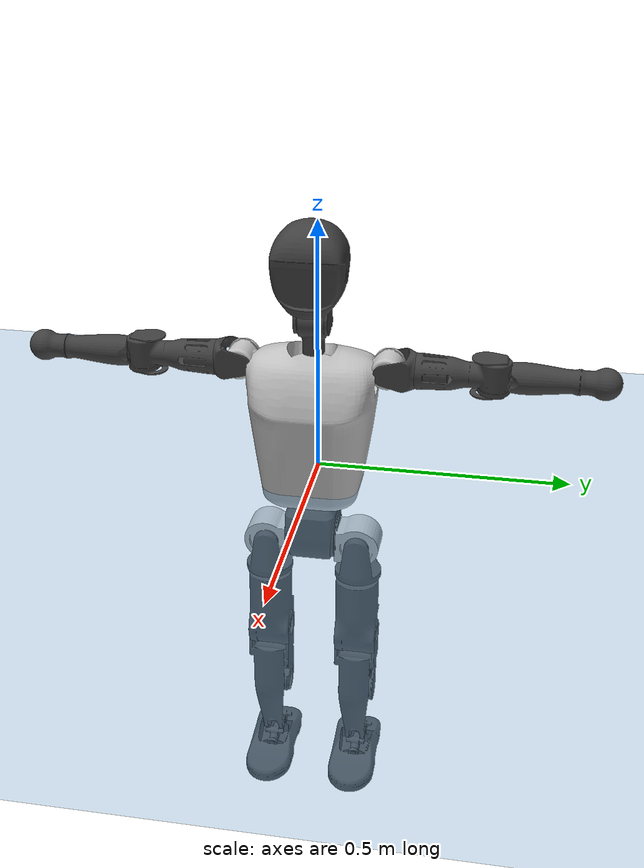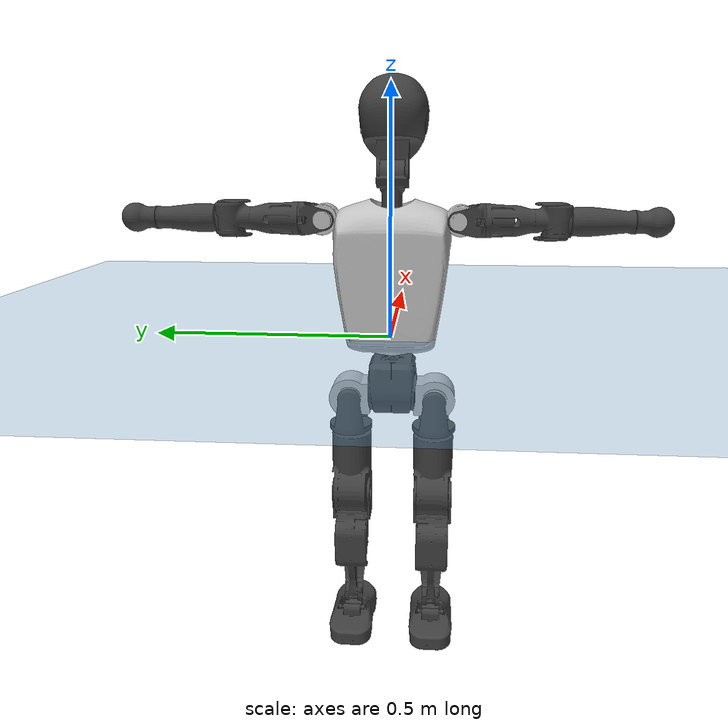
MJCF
<mujoco model="T1">
  <compiler angle="radian" assetdir="assets" balanceinertia="true" inertiafromgeom="false"/>

  <option timestep="0.005" density="1.2" viscosity="2e-05"/>

  <size nkey="1"/>

  <visual>
    <quality shadowsize="8192"/>
    <map shadowclip="0.5"/>
  </visual>

  <default>
    <default class="/">
      <joint armature="0.01" damping="0.01" frictionloss="0.1"/>
      <geom contype="0" conaffinity="0" group="1" solref="-1000 -80"/>
      <site size="0.01 0.005 0.005" group="5"/>
      <general forcelimited="true" biastype="affine" gainprm="25" biasprm="0 -25 -0.6"/>
      <default class="t1">
        <geom rgba="0.25 0.25 0.25 1"/>
        <default class="visual">
          <geom type="mesh" group="2"/>
        </default>
        <default class="collision">
          <geom group="3"/>
        </default>
        <default class="foot">
          <geom size="0.1115 0.05 0.015" type="box" condim="6" group="4" priority="1" solimp="0.015 1 0.015"/>
        </default>
        <default class="reward_collision_sphere">
          <geom group="5" rgba="1 0 0 1"/>
        </default>
      </default>
    </default>
  </default>

  <asset>
    <texture type="skybox" colorspace="auto" name="//unnamed_texture_0" builtin="gradient" rgb1="0.95 0.95 0.95" rgb2="0.95 0.95 0.95" width="100" height="600"/>
    <texture type="2d" colorspace="auto" name="texplane" builtin="checker" rgb1="0.345 0.575 0.748" rgb2="0.345 0.575 0.748" markrgb="1 1 1" width="512" height="512"/>
    <material name="MatPlane" class="/" texture="texplane" texuniform="true" texrepeat="2 2" specular="0.9"/>
    <mesh name="Trunk" class="/" file="Trunk.stl"/>
    <mesh name="H1" class="/" file="H1.stl"/>
    <mesh name="H2" class="/" file="H2.stl"/>
    <mesh name="AL1" class="/" file="AL1.stl"/>
    <mesh name="AL2" class="/" file="AL2.stl"/>
    <mesh name="AL3" class="/" file="AL3.stl"/>
    <mesh name="left_hand_link" class="/" file="left_hand_link.stl"/>
    <mesh name="AR1" class="/" file="AR1.stl"/>
    <mesh name="AR2" class="/" file="AR2.stl"/>
    <mesh name="AR3" class="/" file="AR3.stl"/>
    <mesh name="right_hand_link" class="/" file="right_hand_link.stl"/>
    <mesh name="Waist" class="/" file="Waist.stl"/>
    <mesh name="Hip_Pitch_Left" class="/" file="Hip_Pitch_Left.stl"/>
    <mesh name="Hip_Roll_Left" class="/" file="Hip_Roll_Left.stl"/>
    <mesh name="Hip_Yaw_Left" class="/" file="Hip_Yaw_Left.stl"/>
    <mesh name="Shank_Left" class="/" file="Shank_Left.stl"/>
    <mesh name="Ankle_Cross_Left" class="/" file="Ankle_Cross_Left.stl"/>
    <mesh name="left_foot_link" class="/" file="left_foot_link.stl"/>
    <mesh name="Hip_Pitch_Right" class="/" file="Hip_Pitch_Right.stl"/>
    <mesh name="Hip_Roll_Right" class="/" file="Hip_Roll_Right.stl"/>
    <mesh name="Hip_Yaw_Right" class="/" file="Hip_Yaw_Right.stl"/>
    <mesh name="Shank_Right" class="/" file="Shank_Right.stl"/>
    <mesh name="Ankle_Cross_Right" class="/" file="Ankle_Cross_Right.stl"/>
    <mesh name="right_foot_link" class="/" file="right_foot_link.stl"/>
  </asset>

  <worldbody>
    <geom name="floor" class="/" size="100 100 0.125" type="plane" group="0" material="MatPlane"/>
    <light name="toplight_shadow" class="/" pos="0 0 5" dir="0.0990148 0.0990148 -0.990148" type="directional" ambient="0.04 0.04 0.04" diffuse="0.55 0.55 0.55" specular="0.12 0.12 0.12"/>
    <light name="toplight_fill" class="/" pos="0 0 5" dir="0.0990148 0.0990148 -0.990148" type="directional" castshadow="false" ambient="0.04 0.04 0.04" diffuse="0.3 0.3 0.3" specular="0.08 0.08 0.08"/>
    <body name="trunk" childclass="t1" pos="0.000235334 -5.65698e-05 -0.000121254" quat="1 0.000170137 -1.51401e-05 -1.10258e-06">
      <inertial pos="0.04245 -0.000748775 0.114018" quat="0.999972 0.00309865 -0.00641517 0.00221207" mass="9.0406" diaginertia="0.0273784 0.0411182 0.0826753"/>
      <joint name="//unnamed_joint_0" type="free" armature="0" damping="0" frictionloss="0"/>
      <geom name="//unnamed_geom_1" class="visual" rgba="0.76 0.76 0.76 1" mesh="Trunk"/>
      <geom name="//unnamed_geom_2" class="collision" size="0.0687793 0.0917058 0.137559" pos="0.0470381 0 0.130141" type="box"/>
      <geom name="//unnamed_geom_3" class="reward_collision_sphere" size="0.105462" pos="0.0470381 0 0.108451"/>
      <geom name="//unnamed_geom_4" class="reward_collision_sphere" size="0.0137559" pos="0.0470381 0.0750289 0"/>
      <geom name="//unnamed_geom_5" class="reward_collision_sphere" size="0.0137559" pos="0.0470381 -0.0750289 0"/>
      <geom name="//unnamed_geom_6" class="reward_collision_sphere" size="0.0137559" pos="0.0470381 0.0944482 0.195212"/>
      <geom name="//unnamed_geom_7" class="reward_collision_sphere" size="0.0137559" pos="0.0470381 -0.0944482 0.195212"/>
      <site name="imu" pos="0.00621284 -0.00224289 -0.00378147" size="0.00917058"/>
      <camera name="track" pos="0 -1.76539 0" quat="0.707107 0.707107 0 0" mode="trackcom"/>
      <camera name="ego_camera" pos="0.0956442 0 0.455495" quat="-0.5 -0.5 0.5 0.5"/>
      <body name="H1" pos="0.0494926 0.000567253 0.263227" quat="1 -0.000480324 -0.000169763 -4.09064e-05">
        <inertial pos="-0.00154517 -0.00176187 0.061803" quat="0.763479 -0.0128532 0.00151771 0.645703" mass="0.347233" diaginertia="7.19824e-05 0.000119992 0.000227299"/>
        <joint name="AAHead_yaw" pos="0 0 0" axis="-0.000105403 0.000317641 1" range="-1.58432 1.55536" armature="0.00926618" damping="0.00979955" frictionloss="0.091716"/>
        <geom name="//unnamed_geom_8" class="visual" mesh="H1"/>
        <body name="H2" pos="-0.000434353 -0.000962976 0.0668585" quat="1 -7.36439e-05 7.85822e-05 -3.48724e-05">
          <inertial pos="0.00655443 0.00148808 0.106205" quat="0.98859 0.106734 -0.0726084 -0.0776288" mass="0.492091" diaginertia="0.000596007 0.00103124 0.00255998"/>
          <joint name="Head_pitch" pos="0 0 0" axis="-0.000279732 -1 -0.000691364" range="-1.21771 0.337428" armature="0.0089835" damping="0.00875843" frictionloss="0.0921987"/>
          <geom name="//unnamed_geom_9" class="visual" mesh="H2"/>
          <geom name="//unnamed_geom_10" class="collision" size="0.0733646" pos="0.00783969 0 0.119296"/>
          <geom name="//unnamed_geom_11" class="reward_collision_sphere" size="0.0825352" pos="0.0156794 0 0.108451"/>
        </body>
      </body>
      <body name="AL1" pos="0.0465863 0.0944332 0.238493" quat="1 -7.33357e-05 0.000254725 9.84648e-05">
        <inertial pos="-0.00159573 0.0385576 0.000707365" quat="0.503671 0.495509 -0.507832 0.492842" mass="0.407383" diaginertia="0.000402333 0.000693234 0.000434808"/>
        <joint name="Left_Shoulder_Pitch" pos="0 0 0" axis="-5.39505e-05 0.999999 -0.00114601" range="-3.31893 1.23479" armature="0.00937271" damping="0.0100151" frictionloss="0.092321"/>
        <geom name="//unnamed_geom_12" class="visual" rgba="0.76 0.76 0.76 1" mesh="AL1"/>
        <body name="AL2" pos="0.000393882 0.0432279 0.000162867" quat="1 -0.000511724 -0.000408191 -0.000399018">
          <inertial pos="0.00180207 0.0337633 5.41616e-05" quat="0.486664 0.513769 -0.487893 0.511038" mass="0.126883" diaginertia="0.000119897 0.00018658 0.000266156"/>
          <joint name="Left_Shoulder_Roll" pos="0 0 0" axis="-0.999992 -0.00275269 0.00294364" range="-1.55797 1.73348" armature="0.00875122" damping="0.00424801" frictionloss="0.0941587"/>
          <geom name="//unnamed_geom_13" class="visual" mesh="AL2"/>
          <body name="AL3" pos="-0.000331366 0.054558 7.99819e-05" quat="1 0.000293169 0.00015041 0.000469289">
            <inertial pos="0.000199746 0.0753166 -0.000192695" quat="0.706374 0.707839 -0.000123501 0.000268584" mass="0.794772" diaginertia="0.00385068 0.00690022 0.000951263"/>
            <joint name="Left_Elbow_Pitch" pos="0 0 0" axis="-0.00032763 -0.999999 -0.00120701" range="-2.25527 2.26508" armature="0.00900219" damping="0.0105217" frictionloss="0.091185"/>
            <geom name="//unnamed_geom_14" class="visual" mesh="AL3"/>
            <geom name="//unnamed_geom_15" class="collision" size="0.0275117 0.0687793" pos="0 0.0441347 0" quat="0.707105 0.707108 0 0" type="cylinder"/>
            <geom name="//unnamed_geom_16" class="reward_collision_sphere" size="0.0330141"/>
            <body name="left_hand_link" pos="0.000484718 0.13146 5.93724e-05" quat="1 0.000267054 -0.000223538 0.000198022">
              <inertial pos="-7.38991e-05 0.0975827 -0.000128317" quat="0.706803 0.707407 -0.00197572 0.000517919" mass="0.247732" diaginertia="0.00234528 0.00426304 0.000320356"/>
              <joint name="Left_Elbow_Yaw" pos="0 0 0" axis="0.00380453 -0.00327042 0.999987" range="-2.44761 -0.00256285" armature="0.00920951" damping="0.0138226" frictionloss="0.0973545"/>
              <geom name="//unnamed_geom_17" class="visual" mesh="left_hand_link"/>
              <geom name="//unnamed_geom_18" class="collision" size="0.0275117 0.0802426" pos="0 0.11475 0" quat="0.707105 0.707108 0 0" type="cylinder"/>
              <geom name="//unnamed_geom_19" class="reward_collision_sphere" size="0.0458529"/>
              <geom name="//unnamed_geom_20" class="reward_collision_sphere" size="0.032097" pos="0 0.0970963 0"/>
              <geom name="//unnamed_geom_21" class="reward_collision_sphere" size="0.032097" pos="0 0.189779 0"/>
            </body>
          </body>
        </body>
      </body>
      <body name="AR1" pos="0.0442459 -0.09322 0.23735" quat="1 2.64397e-05 0.000318197 -0.00022712">
        <inertial pos="-0.000829108 -0.040138 0.000461535" quat="0.504459 0.495864 -0.50393 0.495676" mass="0.402752" diaginertia="0.000401974 0.00068912 0.000439415"/>
        <joint name="Right_Shoulder_Pitch" pos="0 0 0" axis="0.00364782 -0.999974 0.00622926" stiffness="0.00545329" range="-1.20815 3.29884" armature="0.0093095" damping="0.00876896" frictionloss="0.092009"/>
        <geom name="//unnamed_geom_22" class="visual" rgba="0.76 0.76 0.76 1" mesh="AR1"/>
        <body name="AR2" pos="-0.00130012 -0.0406644 -0.00037186" quat="1 0.0002027 -0.000218929 -0.000159653">
          <inertial pos="0.00377267 -0.0342143 0.000963645" quat="0.514797 0.485345 -0.51013 0.489072" mass="0.123144" diaginertia="0.000116882 0.000180463 0.000262742"/>
          <joint name="Right_Shoulder_Roll" pos="0 0 0" axis="-0.999972 0.00624702 -0.00423083" range="-1.75822 1.55492" armature="0.00907616" damping="0.00658378" frictionloss="0.0887401"/>
          <geom name="//unnamed_geom_23" class="visual" mesh="AR2"/>
          <body name="AR3" pos="0.000649642 -0.052337 5.61823e-05" quat="1 3.28893e-05 1.71411e-05 -9.47607e-05">
            <inertial pos="-0.000205189 -0.0755044 0.000509445" quat="0.707128 0.707049 -0.00209502 -0.00684818" mass="0.79602" diaginertia="0.00385631 0.00679622 0.000929585"/>
            <joint name="Right_Elbow_Pitch" pos="0 0 0" axis="-0.000836618 0.999999 -0.000653213" stiffness="0.000527822" range="-2.27228 2.26584" armature="0.00894061" damping="0.00507077" frictionloss="0.0959338"/>
            <geom name="//unnamed_geom_24" class="visual" mesh="AR3"/>
            <geom name="//unnamed_geom_25" class="collision" size="0.0275117 0.0687793" pos="0 -0.0441347 0" quat="0.707105 0.707108 0 0" type="cylinder"/>
            <geom name="//unnamed_geom_26" class="reward_collision_sphere" size="0.0330141"/>
            <body name="right_hand_link" pos="-0.00102055 -0.130434 -0.000664582" quat="1 -0.000200177 -0.000343385 0.000105333">
              <inertial pos="-3.05414e-05 -0.0967909 0.00167655" quat="0.705501 0.708704 -0.0016874 0.00183461" mass="0.250473" diaginertia="0.00240509 0.00429023 0.000318624"/>
              <joint name="Right_Elbow_Yaw" pos="0 0 0" axis="-0.00315828 0.0034618 0.999989" range="-0.000583936 2.44426" armature="0.00976208" damping="0.00752835" frictionloss="0.0920054"/>
              <geom name="//unnamed_geom_27" class="visual" mesh="right_hand_link"/>
              <geom name="//unnamed_geom_28" class="collision" size="0.0275117 0.0802426" pos="0 -0.11475 0" quat="0.707105 0.707108 0 0" type="cylinder"/>
              <geom name="//unnamed_geom_29" class="reward_collision_sphere" size="0.0458529"/>
              <geom name="//unnamed_geom_30" class="reward_collision_sphere" size="0.032097" pos="0 -0.0970963 0"/>
              <geom name="//unnamed_geom_31" class="reward_collision_sphere" size="0.032097" pos="0 -0.189779 0"/>
            </body>
          </body>
        </body>
      </body>
      <body name="Waist" pos="0.0491608 -0.00186574 -0.124959" quat="1 0.000167698 1.11523e-05 8.17103e-05">
        <inertial pos="0.00244157 -0.000750533 0.0081042" quat="0.984055 0.00282056 -0.177763 0.0052978" mass="1.97581" diaginertia="0.00159099 0.00281209 0.00716896"/>
        <joint name="Waist" pos="0 0 0" axis="0.00111626 0.000678003 0.999999" range="-1.54512 1.55435" armature="0.00905754" damping="0.0119672" frictionloss="0.090315"/>
        <geom name="//unnamed_geom_32" class="visual" mesh="Waist"/>
        <body name="Hip_Pitch_Left" pos="-0.000198245 0.0934298 0.000251934" quat="1 5.87982e-05 8.7696e-05 -0.000273148">
          <inertial pos="0.00131739 -0.00560521 -0.019679" quat="0.975043 0.221489 0.0152708 0.0012022" mass="0.791044" diaginertia="0.000538988 0.000803599 0.00190332"/>
          <joint name="Left_Hip_Pitch" pos="0 0 0" axis="0.00221193 0.999998 -0.000152319" range="-1.80646 1.55708" armature="0.00921163" damping="0.00533386" frictionloss="0.0916294"/>
          <geom name="//unnamed_geom_33" class="visual" rgba="0.76 0.76 0.76 1" mesh="Hip_Pitch_Left"/>
          <body name="Hip_Roll_Left" pos="-0.000374016 -0.000211309 -0.0209995" quat="1 -1.16052e-05 -1.15355e-05 -2.11915e-05">
            <inertial pos="0.000927396 -8.70613e-05 -0.0579542" quat="0.706447 -0.00576967 -0.00625123 0.707715" mass="0.295521" diaginertia="0.000515298 0.000805136 0.000766432"/>
            <joint name="Left_Hip_Roll" pos="0 0 0" axis="-0.999999 0.000957695 -0.000770305" range="-1.5696 0.205485" armature="0.00909503" damping="0.00932072" frictionloss="0.091205"/>
            <geom name="//unnamed_geom_34" class="visual" mesh="Hip_Roll_Left"/>
            <geom name="//unnamed_geom_35" class="reward_collision_sphere" size="0.0504382"/>
            <body name="Hip_Yaw_Left" pos="0.00145063 -0.000975045 -0.0890332" quat="1 -0.00023784 -0.000293667 -1.8053e-05">
              <inertial pos="-0.00605986 -0.000509615 -0.0963506" quat="0.701082 -0.0333698 -0.0316058 0.711598" mass="1.69065" diaginertia="0.00767177 0.0133441 0.00384577"/>
              <joint name="Left_Hip_Yaw" pos="0 0 0" axis="-0.0004365 -0.000502883 -1" range="-1.00775 1.01806" armature="0.00911198" damping="0.0122449" frictionloss="0.0914589"/>
              <geom name="//unnamed_geom_36" class="visual" mesh="Hip_Yaw_Left"/>
              <geom name="//unnamed_geom_37" class="collision" size="0.0458529 0.0733646" type="cylinder"/>
              <body name="Shank_Left" pos="-0.0098344 -3.62041e-05 -0.144917" quat="1 -0.000263592 -0.00031992 0.000150062">
                <inertial pos="-0.00434037 -7.53479e-05 -0.135126" quat="0.997594 0.00210196 -0.0243996 0.0648502" mass="1.31491" diaginertia="0.0103246 0.0182103 0.00276874"/>
                <joint name="Left_Knee_Pitch" pos="0 0 0" axis="0.00431109 0.999989 -0.00203398" range="-0.0128297 2.34187" armature="0.00915233" damping="0.00724696" frictionloss="0.0930041"/>
                <geom name="//unnamed_geom_38" class="visual" mesh="Shank_Left"/>
                <geom name="//unnamed_geom_39" class="collision" size="0.0458529 0.0687793" pos="0 0 -0.130141" type="cylinder"/>
                <geom name="//unnamed_geom_40" class="reward_collision_sphere" size="0.0596088"/>
                <body name="Ankle_Cross_Left" pos="0.000280312 -3.77159e-05 -0.303595" quat="1 0.000221176 0.00041953 -2.74768e-05">
                  <inertial pos="-0.00321039 -0.000737203 -0.0100136" quat="0.440699 0.551845 0.551264 0.444251" mass="0.0570626" diaginertia="8.68886e-06 1.39561e-05 1.73235e-05"/>
                  <joint name="Left_Ankle_Pitch" pos="0 0 0" axis="-0.000618557 0.999992 -0.0040236" range="-0.898322 0.331559" armature="0.00959851" damping="0.00422491" frictionloss="0.0936065"/>
                  <geom name="//unnamed_geom_41" class="visual" mesh="Ankle_Cross_Left"/>
                  <body name="left_foot_link" pos="-0.000619803 -0.000224151 -0.0144207" quat="1 0.000191495 3.81142e-06 -6.55628e-06">
                    <inertial pos="0.000240612 -0.000650508 -0.00959056" quat="-0.000948794 0.621081 0.00114848 0.783745" mass="0.535425" diaginertia="0.000794445 0.00128048 0.00327484"/>
                    <joint name="Left_Ankle_Roll" pos="0 0 0" axis="-1 -0.000623167 -0.000421214" range="-0.42772 0.454974" armature="0.00911361" damping="0.0136864" frictionloss="0.0934706"/>
                    <geom name="//unnamed_geom_42" class="visual" mesh="left_foot_link"/>
                    <geom name="left_foot" class="foot" size="0.0997568 0.0487934 0.0135224" pos="0.00783969 0 -0.0162677"/>
                    <geom name="//unnamed_geom_44" class="reward_collision_sphere" size="0.047687" pos="0.00783969 0 -0.0162677"/>
                    <geom name="//unnamed_geom_45" class="reward_collision_sphere" size="0.0275117" pos="0.074477 -0.0203019 -0.0162677"/>
                    <geom name="//unnamed_geom_46" class="reward_collision_sphere" size="0.0275117" pos="-0.0548778 -0.0203019 -0.0162677"/>
                    <site name="left_foot" class="foot" pos="0.00783969 0 -0.0162677" size="0.00917058"/>
                  </body>
                </body>
              </body>
            </body>
          </body>
        </body>
        <body name="Hip_Pitch_Right" pos="-0.000543456 -0.0935552 -1.96335e-06" quat="1 -7.96286e-05 0.000127052 1.89251e-05">
          <inertial pos="0.000358776 0.0063052 -0.0184717" quat="0.973475 -0.228232 0.0150224 -0.00558379" mass="0.78612" diaginertia="0.000534426 0.000784648 0.001869"/>
          <joint name="Right_Hip_Pitch" pos="0 0 0" axis="0.000871658 -0.999997 -0.00224595" range="-1.57263 1.80334" armature="0.00923115" damping="0.00840078" frictionloss="0.0875886"/>
          <geom name="//unnamed_geom_47" class="visual" rgba="0.76 0.76 0.76 1" mesh="Hip_Pitch_Right"/>
          <body name="Hip_Roll_Right" pos="-0.00117422 0.000872322 -0.0224865" quat="1 -0.000653107 -0.000280578 -0.000452957">
            <inertial pos="0.0024748 -0.000428493 -0.0575765" quat="0.707315 -0.00585148 -0.00615017 0.706848" mass="0.298057" diaginertia="0.00052204 0.000817175 0.00077437"/>
            <joint name="Right_Hip_Roll" pos="0 0 0" axis="-0.999998 0.00154788 -0.000907127" range="-0.200231 1.56837" armature="0.00928454" damping="0.00949079" frictionloss="0.0916743"/>
            <geom name="//unnamed_geom_48" class="visual" mesh="Hip_Roll_Right"/>
            <geom name="//unnamed_geom_49" class="reward_collision_sphere" size="0.0504382"/>
            <body name="Hip_Yaw_Right" pos="8.77644e-05 0.000297067 -0.0888697" quat="1 -0.000289648 0.00044607 -3.06287e-05">
              <inertial pos="-0.00616283 -0.000818322 -0.0971901" quat="0.715379 -0.0346193 -0.0336604 0.697066" mass="1.67087" diaginertia="0.00773877 0.0139015 0.00387126"/>
              <joint name="Right_Hip_Yaw" pos="0 0 0" axis="0.00138125 0.000439358 -0.999999" range="-0.996423 0.979117" armature="0.00924155" damping="0.00787284" frictionloss="0.0886904"/>
              <geom name="//unnamed_geom_50" class="visual" mesh="Hip_Yaw_Right"/>
              <geom name="//unnamed_geom_51" class="collision" size="0.0458529 0.0733646" type="cylinder"/>
              <body name="Shank_Right" pos="-0.01133 -0.00107843 -0.145031" quat="1 -5.55059e-05 -8.34497e-05 -0.000222528">
                <inertial pos="-0.00446582 -0.000976511 -0.133527" quat="0.99926 -0.00181295 -0.0234188 -0.0304533" mass="1.39314" diaginertia="0.0103963 0.01852 0.00293811"/>
                <joint name="Right_Knee_Pitch" pos="0 0 0" axis="-0.000844644 -0.999984 0.00552675" range="-2.33947 -0.00789355" armature="0.00925053" damping="0.00365842" frictionloss="0.0878069"/>
                <geom name="//unnamed_geom_52" class="visual" mesh="Shank_Right"/>
                <geom name="//unnamed_geom_53" class="collision" size="0.0458529 0.0687793" pos="0 0 -0.130141" type="cylinder"/>
                <geom name="//unnamed_geom_54" class="reward_collision_sphere" size="0.0596088"/>
                <body name="Ankle_Cross_Right" pos="0.00132574 -0.000870298 -0.303447" quat="1 -0.000215006 -0.000100811 4.46643e-05">
                  <inertial pos="-0.00290935 0.00059631 -0.00885633" quat="0.446506 0.550604 0.548649 0.443229" mass="0.0563042" diaginertia="8.63443e-06 1.38436e-05 1.70193e-05"/>
                  <joint name="Right_Ankle_Pitch" pos="0 0 0" axis="-0.00457862 -0.999968 0.00655088" range="-0.350536 0.879174" armature="0.0091343" damping="0.00891779" frictionloss="0.0857159"/>
                  <geom name="//unnamed_geom_55" class="visual" mesh="Ankle_Cross_Right"/>
                  <body name="right_foot_link" pos="0.000289768 -0.00015172 -0.0139721" quat="1 -0.000193956 0.000106509 -0.000418839">
                    <inertial pos="-2.82927e-05 0.000514102 -0.0101523" quat="0.000129429 0.62261 -0.000916264 0.782532" mass="0.524487" diaginertia="0.000797606 0.00127265 0.00328728"/>
                    <joint name="Right_Ankle_Roll" pos="0 0 0" axis="-0.999999 -0.000647407 -0.00156441" range="-0.41193 0.421058" armature="0.00932452" damping="0.00840627" frictionloss="0.0926743"/>
                    <geom name="//unnamed_geom_56" class="visual" mesh="right_foot_link"/>
                    <geom name="right_foot" class="foot" size="0.093065 0.0459003 0.0136858" pos="0.00783969 0 -0.0162677"/>
                    <geom name="//unnamed_geom_58" class="reward_collision_sphere" size="0.0366823"/>
                    <geom name="//unnamed_geom_59" class="reward_collision_sphere" size="0.0275117" pos="0.00783969 0 -0.0162677"/>
                    <geom name="//unnamed_geom_60" class="reward_collision_sphere" size="0.0275117" pos="0.074477 0.0203019 -0.0162677"/>
                    <geom name="//unnamed_geom_61" class="reward_collision_sphere" size="0.0275117" pos="-0.0548778 0.0203019 -0.0162677"/>
                    <site name="right_foot" class="foot" pos="0.00783969 0 -0.0162677" size="0.00917058"/>
                  </body>
                </body>
              </body>
            </body>
          </body>
        </body>
      </body>
    </body>
  </worldbody>

  <contact>
    <pair class="/" geom1="floor" geom2="left_foot" name="//unnamed_contact_0"/>
    <pair class="/" geom1="floor" geom2="right_foot" name="//unnamed_contact_1"/>
  </contact>

  <actuator>
    <general name="AAHead_yaw" class="/" joint="AAHead_yaw" forcerange="-6.64499 6.64499" gainprm="22.7508" biasprm="0 -22.7508 -0.523111"/>
    <general name="Head_pitch" class="/" joint="Head_pitch" forcerange="-6.5298 6.5298" gainprm="22.7508" biasprm="0 -22.7508 -0.523111"/>
    <general name="Left_Shoulder_Pitch" class="/" joint="Left_Shoulder_Pitch" forcerange="-16.552 16.552" gainprm="22.7508" biasprm="0 -22.7508 -0.523111"/>
    <general name="Left_Shoulder_Roll" class="/" joint="Left_Shoulder_Roll" forcerange="-16.3326 16.3326" gainprm="22.7508" biasprm="0 -22.7508 -0.523111"/>
    <general name="Left_Elbow_Pitch" class="/" joint="Left_Elbow_Pitch" forcerange="-16.6624 16.6624" gainprm="22.7508" biasprm="0 -22.7508 -0.523111"/>
    <general name="Left_Elbow_Yaw" class="/" joint="Left_Elbow_Yaw" forcerange="-16.3144 16.3144" gainprm="22.7508" biasprm="0 -22.7508 -0.523111"/>
    <general name="Right_Shoulder_Pitch" class="/" joint="Right_Shoulder_Pitch" forcerange="-16.4205 16.4205" gainprm="22.7508" biasprm="0 -22.7508 -0.523111"/>
    <general name="Right_Shoulder_Roll" class="/" joint="Right_Shoulder_Roll" forcerange="-16.4366 16.4366" gainprm="22.7508" biasprm="0 -22.7508 -0.523111"/>
    <general name="Right_Elbow_Pitch" class="/" joint="Right_Elbow_Pitch" forcerange="-16.6207 16.6207" gainprm="22.7508" biasprm="0 -22.7508 -0.523111"/>
    <general name="Right_Elbow_Yaw" class="/" joint="Right_Elbow_Yaw" forcerange="-16.5927 16.5927" gainprm="22.7508" biasprm="0 -22.7508 -0.523111"/>
    <general name="Waist" class="/" joint="Waist" forcerange="-26.6966 26.6966" gainprm="22.7508" biasprm="0 -22.7508 -0.523111"/>
    <general name="Left_Hip_Pitch" class="/" joint="Left_Hip_Pitch" forcerange="-39.1147 39.1147" gainprm="22.7508" biasprm="0 -22.7508 -0.523111"/>
    <general name="Left_Hip_Roll" class="/" joint="Left_Hip_Roll" forcerange="-27.8717 27.8717" gainprm="22.7508" biasprm="0 -22.7508 -0.523111"/>
    <general name="Left_Hip_Yaw" class="/" joint="Left_Hip_Yaw" forcerange="-27.1254 27.1254" gainprm="22.7508" biasprm="0 -22.7508 -0.523111"/>
    <general name="Left_Knee_Pitch" class="/" joint="Left_Knee_Pitch" forcerange="-55.245 55.245" gainprm="22.7508" biasprm="0 -22.7508 -0.523111"/>
    <general name="Left_Ankle_Pitch" class="/" joint="Left_Ankle_Pitch" forcerange="-18.6829 18.6829" gainprm="22.7508" biasprm="0 -22.7508 -0.523111"/>
    <general name="Left_Ankle_Roll" class="/" joint="Left_Ankle_Roll" forcerange="-13.7621 13.7621" gainprm="22.7508" biasprm="0 -22.7508 -0.523111"/>
    <general name="Right_Hip_Pitch" class="/" joint="Right_Hip_Pitch" forcerange="-42.746 42.746" gainprm="22.7508" biasprm="0 -22.7508 -0.523111"/>
    <general name="Right_Hip_Roll" class="/" joint="Right_Hip_Roll" forcerange="-27.7441 27.7441" gainprm="22.7508" biasprm="0 -22.7508 -0.523111"/>
    <general name="Right_Hip_Yaw" class="/" joint="Right_Hip_Yaw" forcerange="-27.1565 27.1565" gainprm="22.7508" biasprm="0 -22.7508 -0.523111"/>
    <general name="Right_Knee_Pitch" class="/" joint="Right_Knee_Pitch" forcerange="-53.1412 53.1412" gainprm="22.7508" biasprm="0 -22.7508 -0.523111"/>
    <general name="Right_Ankle_Pitch" class="/" joint="Right_Ankle_Pitch" forcerange="-18.9466 18.9466" gainprm="22.7508" biasprm="0 -22.7508 -0.523111"/>
    <general name="Right_Ankle_Roll" class="/" joint="Right_Ankle_Roll" forcerange="-13.2788 13.2788" gainprm="22.7508" biasprm="0 -22.7508 -0.523111"/>
  </actuator>

  <sensor>
    <gyro site="imu" name="imu_angular_velocity"/>
    <velocimeter site="imu" name="imu_linear_velocity"/>
    <framelinvel objtype="site" objname="left_foot" name="left_foot_global_linear_velocity"/>
    <framelinvel objtype="site" objname="right_foot" name="right_foot_global_linear_velocity"/>
  </sensor>

  <keyframe>
    <key name="home" qpos="0 0 0.6385 1 0 0 0 0 0 0 1.4 0 -0.4 0 -1.4 0 0.4 0 -0.4 0 0 0.8 -0.4 0 0.4 0 0 -0.8 0.4 0"/>
  </keyframe>
</mujoco>
